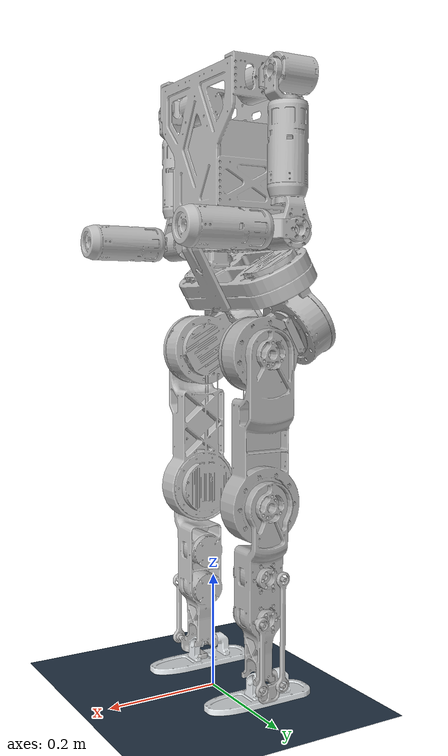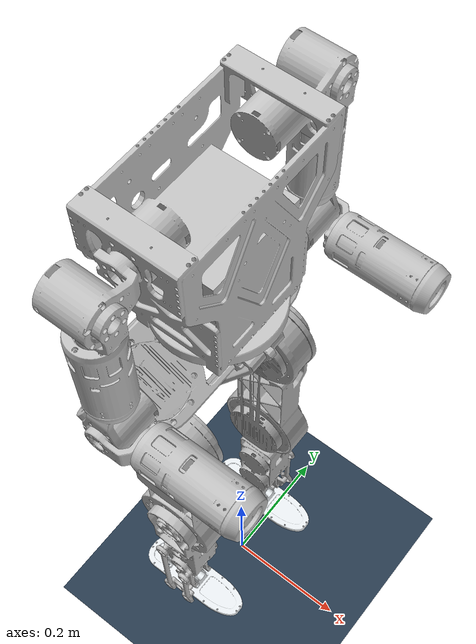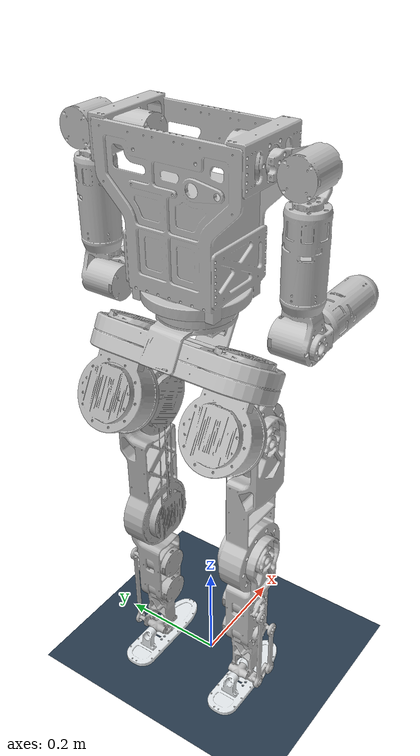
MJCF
<mujoco model="atom_urdf_long">
    <compiler angle="radian" meshdir="./meshes/" eulerseq="zyx"/>
    <option timestep='0.001' iterations='100' solver='PGS' gravity='0 0 -9.81'>
        <flag frictionloss="enable"/>
    </option>
    <size njmax="500" nconmax="100"/>
    <visual>
        <quality shadowsize='4096'/>
        <map znear='0.05'/>
    </visual>
    <default>
        <joint limited='true'/>
        <motor ctrllimited='true'/>
        <geom condim='4' contype="1" conaffinity="15" solref='0.001 2' friction='0.9 0.2 0.2' group="1"/>
        <equality solref='0.001 2'/>
        <default class='visualgeom'>
            <geom material='visualgeom' condim='1' contype='0' conaffinity='0'/>
        </default>
        <default class='obstacle'>
            <geom material='obstacle' condim='3' contype='1' conaffinity='15'/>
        </default>
        <default class='waist_joint_param'>
            <joint damping="0.01" frictionloss="0.01" armature="0.01"/>
        </default>
        <default class='leg_joint_param'>
            <joint damping="0.01" frictionloss="0.01" armature="0.01"/>
        </default>
        <default class='arm_joint_param'>
            <joint damping="0.01" frictionloss="0.01" armature="0.01"/>
        </default>
    </default>
    <asset>
        <texture type="skybox" builtin="gradient" rgb1="0.3 0.5 0.7" rgb2="0 0 0" width="512" height="512"/>
        <texture name="texplane" type="2d" builtin="checker" rgb1=".2 .3 .4" rgb2=".1 0.15 0.2"
            width="512" height="512" mark="cross" markrgb=".8 .8 .8"/>

        <material name="matplane" reflectance="0." texture="texplane" texrepeat="1 1" texuniform="true"/>

        <material name='obstacle'  rgba='0.9 0.6 0.2 1'/>
        <material name='visualgeom'  rgba='0.5 0.9 0.2 1'/>

        <mesh name="base_link"  file="base_link.STL"/>
        <mesh name="left_thigh_yaw_link"  file="left_thigh_yaw_link.STL"/>
        <mesh name="left_thigh_roll_link"  file="left_thigh_roll_link.STL"/>
        <mesh name="left_thigh_pitch_link"  file="left_thigh_pitch_link.STL"/>
        <mesh name="left_knee_link"  file="left_knee_link.STL"/>
        <mesh name="left_ankle_pitch_link"  file="left_ankle_pitch_link.STL"/>
        <mesh name="left_ankle_roll_link"  file="left_ankle_roll_link.STL"/>
        <mesh name="right_thigh_yaw_link"  file="right_thigh_yaw_link.STL"/>
        <mesh name="right_thigh_roll_link"  file="right_thigh_roll_link.STL"/>
        <mesh name="right_thigh_pitch_link"  file="right_thigh_pitch_link.STL"/>
        <mesh name="right_knee_link"  file="right_knee_link.STL"/>
        <mesh name="right_ankle_pitch_link"  file="right_ankle_pitch_link.STL"/>
        <mesh name="right_ankle_roll_link"  file="right_ankle_roll_link.STL"/>
        <mesh name="torso_link"  file="torso_link.STL"/>
        <mesh name="left_arm_pitch_link"  file="left_arm_pitch_link.STL"/>
        <mesh name="left_arm_roll_link"  file="left_arm_roll_link.STL"/>
        <mesh name="left_arm_yaw_link"  file="left_arm_yaw_link.STL"/>
        <mesh name="left_elbow_pitch_link"  file="left_elbow_pitch_link.STL"/>
        <mesh name="left_elbow_yaw_link"  file="left_elbow_yaw_link.STL"/>
        <mesh name="right_arm_pitch_link"  file="right_arm_pitch_link.STL"/>
        <mesh name="right_arm_roll_link"  file="right_arm_roll_link.STL"/>
        <mesh name="right_arm_yaw_link"  file="right_arm_yaw_link.STL"/>
        <mesh name="right_elbow_pitch_link"  file="right_elbow_pitch_link.STL"/>
        <mesh name="right_elbow_yaw_link"  file="right_elbow_yaw_link.STL"/>

        <hfield name='hf0' nrow='200' ncol='200' size="10 5 0.2 .1"/>
    </asset>
    <worldbody>
        <light directional="true" diffuse=".4 .4 .4" specular="0.1 0.1 0.1" pos="0 0 5.0" dir="0 0 -1" castshadow="false"/>
        <light directional="true" diffuse=".6 .6 .6" specular="0.2 0.2 0.2" pos="0 0 4" dir="0 0 -1"/>
        <geom name="ground" type="plane" size="0 0 1" pos="0.001 0 0" quat="1 0 0 0" material="matplane" condim="1" conaffinity='15' group="0"/>

        <body name="base_link" pos="0 0 0.75">
            <site name='imu' size='0.01' pos='0.0 0 0.0'/>
         <inertial
            pos="-0.04747316 -0.00000245 -0.01033754"
            mass="5.38006123"
            fullinertia="0.03019625 0.02710884 0.04164465 0.00000001 -0.00325334 0.00000014"/>
            <joint name="floating_base_joint" type="free" limited="false"/>
            <geom type="mesh" rgba="0.75294 0.75294 0.75294 1" mesh="base_link"/>
            <body name="left_thigh_yaw_link" pos="-0.071093 0.1 -0.051778">
            <inertial
                pos="-0.03860399 0.00000000 -0.05488876"
                mass="1.68866185"
                fullinertia="0.00828412 0.01007750 0.00500466 0.00000001 -0.00427630 0.00000000"/>
                <joint name="left_thigh_yaw_joint" pos="0 0 0" axis="-0.499998 0 -0.866027" range="-1 0.2" class="leg_joint_param"/>
                <geom type="mesh" rgba="0.69804 0.69804 0.69804 1" mesh="left_thigh_yaw_link" class="visualgeom"/>
                <body name="left_thigh_roll_link" pos="-0.017693 0 -0.072346">
                <inertial
                    pos="0.05565085 -0.00585964 -0.03213037"
                    mass="1.71632646"
                    fullinertia="0.00408080 0.01086273 0.00787597 0.00060873 0.00328672 -0.00035146"/>
                    <joint name="left_thigh_roll_joint" pos="0 0 0" axis="0.866027 0 -0.499998" range="-0.2 2" class="leg_joint_param"/>
                    <geom type="mesh" rgba="0.69804 0.69804 0.69804 1" mesh="left_thigh_roll_link" class="visualgeom"/>
                    <body name="left_thigh_pitch_link" pos="0.060622 0.02085 -0.035">
                    <inertial
                        pos="0.00004587 -0.01904764 -0.19858147"
                        mass="2.34600762"
                        fullinertia="0.11355467 0.11410206 0.00388054 -0.00000105 0.00003567 -0.01102469"/>
                        <joint name="left_thigh_pitch_joint" pos="0 0 0" axis="0 1 0" range="-2.5 0.8" class="leg_joint_param"/>
                        <geom type="mesh" rgba="0.69804 0.69804 0.69804 1" mesh="left_thigh_pitch_link" class="visualgeom"/>
                        <body name="left_knee_link" pos="0 0 -0.25">
                        <inertial
                            pos="-0.00032236 -0.01251629 -0.14554011"
                            mass="1.79036871"
                            fullinertia="0.05037722 0.04980070 0.00144706 0.00001321 -0.00005629 -0.00362648"/>
                            <joint name="left_knee_joint" pos="0 0 0" axis="0 1 0" range="0 2.5" class="leg_joint_param"/>
                            <geom type="mesh" rgba="0.69804 0.69804 0.69804 1" mesh="left_knee_link" class="visualgeom"/>
                            <body name="left_ankle_pitch_link" pos="0 -0.02085 -0.3">
                            <inertial
                                pos="0 0 0"
                                mass="0.084"
                                fullinertia="0.00000863 0.00000863 0.00001448 0 0 0"/>
                                <joint name="left_ankle_pitch_joint" pos="0 0 0" axis="0 1 0" range="-0.6 0.6" class="leg_joint_param" frictionloss="0.05"/>
                                <geom type="mesh" rgba="0.69804 0.69804 0.69804 1" mesh="left_ankle_pitch_link" class="visualgeom"/>
                                <body name="left_ankle_roll_link">
                                <inertial
                                    pos="0.01590617 0.00230268 -0.02949007"
                                    mass="0.30640039"
                                    fullinertia="0.00038476 0.00086435 0.00063926 0.0 0.00017084 0.00000894"/>
                                    <joint name="left_ankle_roll_joint" pos="0 0 0" axis="1 0 0" range="-0.5 0.5" class="leg_joint_param" frictionloss="0.05"/>
                                    <geom type="mesh" rgba="0.898039 0.917647 0.929412 1" mesh="left_ankle_roll_link"/>
                                </body>
                            </body>
                        </body>
                    </body>
                </body>
            </body>
            <body name="right_thigh_yaw_link" pos="-0.071093 -0.1 -0.051778">
            <inertial
                pos="-0.03859500 0.00000000 -0.05502715"
                mass="1.68565743"
                fullinertia="0.00828370 0.01007691 0.00500350 0.00000001 -0.00427632 0.00000000"/>
                <joint name="right_thigh_yaw_joint" pos="0 0 0" axis="-0.499998 0 -0.866027" range="-0.2 1" class="leg_joint_param"/>
                <geom type="mesh" rgba="0.752941 0.752941 0.752941 1" mesh="right_thigh_yaw_link" class="visualgeom"/>
                <body name="right_thigh_roll_link" pos="-0.0189924084475403 0 -0.0715958163677252">
                <inertial
                    pos="0.05695017 0.00585964 -0.03287986"
                    mass="1.71632646"
                    fullinertia="0.00416447 0.01119747 0.00812703 -0.00062180 0.00343166 0.00035899"/>
                    <joint name="right_thigh_roll_joint" pos="0 0 0" axis="0.866027 0 -0.499998" range="-2 0.2" class="leg_joint_param"/>
                    <geom type="mesh" rgba="0.752941 0.752941 0.752941 1" mesh="right_thigh_roll_link" class="visualgeom"/>
                    <body name="right_thigh_pitch_link" pos="0.0619208163652291 -0.0208499999999942 -0.0357500000093095">
                    <inertial
                        pos="0.00004584 0.01904764 -0.19858147"
                        mass="2.34600762"
                        fullinertia="0.11355467 0.11410206 0.00388054 0.00000105 0.00003566 0.01102469"/>
                        <joint name="right_thigh_pitch_joint" pos="0 0 0" axis="0 1 0" range="-2.5 0.8" class="leg_joint_param"/>
                        <geom type="mesh" rgba="0.752941 0.752941 0.752941 1" mesh="right_thigh_pitch_link" class="visualgeom"/>
                        <body name="right_knee_link" pos="0 0 -0.250000000000016">
                        <inertial
                            pos="0.00034876 0.01251629 -0.14550316"
                            mass="1.79036871"
                            fullinertia="0.05035671 0.04978019 0.00144706 0.00001321 0.00006361 0.00362648"/>
                            <joint name="right_knee_joint" pos="0 0 0" axis="0 1 0" range="0 2.5" class="leg_joint_param"/>
                            <geom type="mesh" rgba="0.752941 0.752941 0.752941 1" mesh="right_knee_link" class="visualgeom"/>
                            <body name="right_ankle_pitch_link" pos="0 0.0208500000000073 -0.299999999999986">
                            <inertial
                                pos="0 0 0"
                                mass="0.084"
                                fullinertia="0.00000863 0.00000863 0.00001448 0 0 0"/>
                                <joint name="right_ankle_pitch_joint" pos="0 0 0" axis="0 1 0" range="-0.6 0.6" class="leg_joint_param" frictionloss="0.05"/>
                                <geom type="mesh" rgba="0.752941 0.752941 0.752941 1" mesh="right_ankle_pitch_link" class="visualgeom"/>
                                <body name="right_ankle_roll_link">
                                <inertial
                                    pos="0.01590617 -0.00230290 -0.02949007"
                                    mass="0.30640039"
                                    fullinertia="0.00038476 0.00086435 0.00063926 0.00000000 0.00017084 -0.00000894"/>
                                    <joint name="right_ankle_roll_joint" pos="0 0 0" axis="1 0 0" range="-0.5 0.5" class="leg_joint_param" frictionloss="0.05"/>
                                    <geom type="mesh" rgba="0.898039 0.917647 0.929412 1" mesh="right_ankle_roll_link"/>
                                </body>
                            </body>
                        </body>
                    </body>
                </body>
            </body>
            <body name="torso_link" pos="-0.0281649492242451 0 0.0672000000054882">
            <inertial
                pos="-0.00232713 -0.00003499 0.09671181"
                mass="7.70005232"
                fullinertia="0.14285885 0.13043257 0.03968469 -0.00004101 0.00400640 0.00003257"/>
                <joint name="torso_joint" pos="0 0 0" axis="0 0 1" range="-2.62 2.62" class="waist_joint_param"/>
                <geom type="mesh" rgba="0.752941 0.752941 0.752941 1" mesh="torso_link" class="visualgeom"/>
                <body name="left_arm_pitch_link" pos="0 0.121749999999383 0.206175860782433">
                <inertial
                    pos="-0.00442275 0.04993792 0.00005596"
                    mass="0.47178757"
                    fullinertia="0.00133228 0.00008982 0.00137408 0.00012643 -0.00000056 -0.00000148"/>
                    <joint name="left_arm_pitch_joint" pos="0 0 0" axis="0 1 0" range="-3.14 1.57" class="arm_joint_param"/>
                    <geom type="mesh" rgba="0.752941 0.752941 0.752941 1" mesh="left_arm_pitch_link" class="visualgeom"/>
                    <body name="left_arm_roll_link" pos="0.02 0.056 0">
                    <inertial
                        pos="-0.00433076 0 -0.02378501"
                        mass="0.09168685"
                        fullinertia="0.00010210 0.00011636 0.00003231 0.0 -0.00002948 0.0"/>
                        <joint name="left_arm_roll_joint" pos="0 0 0" axis="1 0 0" range="-0.25 3.14" class="arm_joint_param"/>
                        <geom type="mesh" rgba="0.752941 0.752941 0.752941 1" mesh="left_arm_roll_link" class="visualgeom"/>
                        <body name="left_arm_yaw_link" pos="-0.02 0 -0.05">
                        <inertial
                            pos="-0.00004328 -0.00182110 -0.10615897"
                            mass="1.15324429"
                            fullinertia="0.01919610 0.01915491 0.00033463 -0.00000011 -0.00000607 -0.00040415"/>
                            <joint name="left_arm_yaw_joint" pos="0 0 0" axis="0 0 -1" range="-2.6 2.6" class="arm_joint_param"/>
                            <geom type="mesh" rgba="0.752941 0.752941 0.752941 1" mesh="left_arm_yaw_link" class="visualgeom"/>
                            <body name="left_elbow_pitch_link" pos="0 0.02 -0.18875">
                            <inertial
                                 pos="0.02378501 -0.00433076 0.00000000"
                                 mass="0.09168685"
                                 fullinertia="0.00003231 0.00010210 0.00011636 0.00002948 0.0 0.0"/>
                                 <joint name="left_elbow_pitch_joint" pos="0 0 0" axis="0 1 0" range="-1 1.57" class="arm_joint_param"/>
                                <geom type="mesh" rgba="0.752941 0.752941 0.752941 1" mesh="left_elbow_pitch_link" class="visualgeom"/>
                                <body name="left_elbow_yaw_link" pos="0.05 -0.02 0">
                                <inertial
                                 pos="0.05317629 -0.00003450 -0.00001992"
                                 mass="0.68145673"
                                 fullinertia="0.00024481 0.00325259 0.00325345 0.00000117 0.00000058 -0.00000060"/>
                                    <joint name="left_elbow_yaw_joint" pos="0 0 0" axis="1 0 0" range="-1.57 1.57" class="arm_joint_param"/>
                                    <geom type="mesh" rgba="0.752941 0.752941 0.752941 1" mesh="left_elbow_yaw_link" class="visualgeom"/>
                                </body>
                            </body>
                        </body>
                    </body>
                </body>
                <body name="right_arm_pitch_link" pos="0 -0.12175 0.20518">
                <inertial
                    pos="-0.00442275 -0.04993792 0.00005596"
                    mass="0.47178757"
                    fullinertia="0.00133228 0.00008982 0.00137408 -0.00012643 -0.00000056 0.00000148"/>
                    <joint name="right_arm_pitch_joint" pos="0 0 0" axis="0 1 0" range="-3.14 1.57" class="arm_joint_param"/>
                    <geom type="mesh" rgba="0.752941 0.752941 0.752941 1" mesh="right_arm_pitch_link" class="visualgeom"/>
                    <body name="right_arm_roll_link" pos="0.02 -0.056 0">
                    <inertial
                        pos="-0.00433076 0.00000000 -0.02378501"
                        mass="0.09168685"
                        fullinertia="0.00010210 0.00011636 0.00003231 0.0 -0.00002948 0.0"/>
                        <joint name="right_arm_roll_joint" pos="0 0 0" axis="1 0 0" range="-3.14 0.25" class="arm_joint_param"/>
                        <geom type="mesh" rgba="0.752941 0.752941 0.752941 1" mesh="right_arm_roll_link" class="visualgeom"/>
                        <body name="right_arm_yaw_link" pos="-0.02 0 -0.05">
                        <inertial
                            pos="-0.00002289 0.00183287 -0.10615897"
                            mass="1.15324429"
                            fullinertia="0.01919714 0.01915387 0.00033463 -0.00000049 -0.00000506 0.00040473"/>
                            <joint name="right_arm_yaw_joint" pos="0 0 0" axis="0 0 -1" range="-2.6 2.6" class="arm_joint_param"/>
                            <geom type="mesh" rgba="0.752941 0.752941 0.752941 1" mesh="right_arm_yaw_link" class="visualgeom"/>
                            <body name="right_elbow_pitch_link" pos="0 -0.02 -0.18875">
                            <inertial
                                pos="0.02378501 0.00433076 0"
                                mass="0.09168685"
                                fullinertia="0.00003231 0.00010210 0.00011636 -0.00002948 0.0 0.0"/>
                                <joint name="right_elbow_pitch_joint" pos="0 0 0" axis="0 1 0" range="-1.0 1.57" class="arm_joint_param"/>
                                <geom type="mesh" rgba="0.752941 0.752941 0.752941 1" mesh="right_elbow_pitch_link" class="visualgeom"/>
                                <body name="right_elbow_yaw_link" pos="0.05 0.02 0">
                                <inertial
                                    pos="0.05317629 0.00003450 0.00001992"
                                    mass="0.68145673"
                                    fullinertia="0.00024481 0.00325259 0.00325345 -0.00000117 -0.00000058 -0.00000060"/>
                                    <joint name="right_elbow_yaw_joint" pos="0 0 0" axis="1 0 0" range="-1.57 1.57" class="arm_joint_param"/>
                                    <geom type="mesh" rgba="0.752941 0.752941 0.752941 1" mesh="right_elbow_yaw_link" class="visualgeom"/>
                                </body>
                            </body>
                        </body>
                    </body>
                </body>
            </body>
        </body>
    </worldbody>

    <actuator>
        <motor name="left_thigh_yaw_joint" joint="left_thigh_yaw_joint" gear="1" ctrllimited="true" ctrlrange="-200 200"/>
        <motor name="left_thigh_roll_joint" joint="left_thigh_roll_joint" gear="1" ctrllimited="true" ctrlrange="-200 200"/>
        <motor name="left_thigh_pitch_joint" joint="left_thigh_pitch_joint" gear="1" ctrllimited="true" ctrlrange="-200 200"/>
        <motor name="left_knee_joint" joint="left_knee_joint" gear="1" ctrllimited="true" ctrlrange="-200 200"/>
        <motor name="left_ankle_pitch_joint" joint="left_ankle_pitch_joint" gear="1" ctrllimited="true" ctrlrange="-200 200"/>
        <motor name="left_ankle_roll_joint" joint="left_ankle_roll_joint" gear="1" ctrllimited="true" ctrlrange="-200 200"/>
        <motor name="right_thigh_yaw_joint" joint="right_thigh_yaw_joint" gear="1" ctrllimited="true" ctrlrange="-200 200"/>
        <motor name="right_thigh_roll_joint" joint="right_thigh_roll_joint" gear="1" ctrllimited="true" ctrlrange="-200 200"/>
        <motor name="right_thigh_pitch_joint" joint="right_thigh_pitch_joint" gear="1" ctrllimited="true" ctrlrange="-200 200"/>
        <motor name="right_knee_joint" joint="right_knee_joint" gear="1" ctrllimited="true" ctrlrange="-200 200"/>
        <motor name="right_ankle_pitch_joint" joint="right_ankle_pitch_joint" gear="1" ctrllimited="true" ctrlrange="-200 200"/>
        <motor name="right_ankle_roll_joint" joint="right_ankle_roll_joint" gear="1" ctrllimited="true" ctrlrange="-200 200"/>
        <motor name="torso_joint" joint="torso_joint" gear="1" ctrllimited="true" ctrlrange="-200 200"/>

        <motor name="left_arm_pitch_joint" joint="left_arm_pitch_joint" gear="1" ctrllimited="true" ctrlrange="-200 200"/>
        <motor name="left_arm_roll_joint" joint="left_arm_roll_joint" gear="1" ctrllimited="true" ctrlrange="-200 200"/>
        <motor name="left_arm_yaw_joint" joint="left_arm_yaw_joint" gear="1" ctrllimited="true" ctrlrange="-200 200"/>
        <motor name="left_elbow_pitch_joint" joint="left_elbow_pitch_joint" gear="1" ctrllimited="true" ctrlrange="-200 200"/>
        <motor name="left_elbow_yaw_joint" joint="left_elbow_yaw_joint" gear="1" ctrllimited="true" ctrlrange="-200 200"/>
        <motor name="right_arm_pitch_joint" joint="right_arm_pitch_joint" gear="1" ctrllimited="true" ctrlrange="-200 200"/>
        <motor name="right_arm_roll_joint" joint="right_arm_roll_joint" gear="1" ctrllimited="true" ctrlrange="-200 200"/>
        <motor name="right_arm_yaw_joint" joint="right_arm_yaw_joint" gear="1" ctrllimited="true" ctrlrange="-200 200"/>
        <motor name="right_elbow_pitch_joint" joint="right_elbow_pitch_joint" gear="1" ctrllimited="true" ctrlrange="-200 200"/>
        <motor name="right_elbow_yaw_joint" joint="right_elbow_yaw_joint" gear="1" ctrllimited="true" ctrlrange="-200 200"/>
    </actuator>

         <sensor>
                <actuatorpos name='left_thigh_yaw_p'  actuator='left_thigh_yaw_joint' user='13'/>
                <actuatorpos name='left_thigh_roll_p'  actuator='left_thigh_roll_joint' user='13'/>
                <actuatorpos name='left_thigh_pitch_p'  actuator='left_thigh_pitch_joint' user='13'/>
                <actuatorpos name='left_knee_p'  actuator='left_knee_joint' user='13'/>
                <actuatorpos name='left_ankle_pitch_p'  actuator='left_ankle_pitch_joint' user='13'/>
                <actuatorpos name='left_ankle_roll_p'  actuator='left_ankle_roll_joint' user='13'/>
                <actuatorpos name='right_thigh_yaw_p'  actuator='right_thigh_yaw_joint' user='13'/>
                <actuatorpos name='right_thigh_roll_p'  actuator='right_thigh_roll_joint' user='13'/>
                <actuatorpos name='right_thigh_pitch_p'  actuator='right_thigh_pitch_joint' user='13'/>
                <actuatorpos name='right_knee_p'  actuator='right_knee_joint' user='13'/>
                <actuatorpos name='right_ankle_pitch_p'  actuator='right_ankle_pitch_joint' user='13'/>
                <actuatorpos name='right_ankle_roll_p'  actuator='right_ankle_roll_joint' user='13'/>
                <actuatorpos name='torso_yaw_p'  actuator='torso_joint' user='13'/>
                <actuatorpos name='left_arm_pitch_p'  actuator='left_arm_pitch_joint' user='13'/>
                <actuatorpos name='left_arm_roll_p'  actuator='left_arm_roll_joint' user='13'/>
                <actuatorpos name='left_arm_yaw_p'  actuator='left_arm_yaw_joint' user='13'/>
                <actuatorpos name='left_elbow_pitch_p'  actuator='left_elbow_pitch_joint' user='13'/>
                <actuatorpos name='left_elbow_yaw_p'  actuator='left_elbow_yaw_joint' user='13'/>
                <actuatorpos name='right_arm_pitch_p'  actuator='right_arm_pitch_joint' user='13'/>
                <actuatorpos name='right_arm_roll_p'  actuator='right_arm_roll_joint' user='13'/>
                <actuatorpos name='right_arm_yaw_p'  actuator='right_arm_yaw_joint' user='13'/>
                <actuatorpos name='right_elbow_pitch_p'  actuator='right_elbow_pitch_joint' user='13'/>
                <actuatorpos name='right_elbow_yaw_p'  actuator='right_elbow_yaw_joint' user='13'/>

                <actuatorvel name='left_thigh_yaw_v'  actuator='left_thigh_yaw_joint' user='13'/>
                <actuatorvel name='left_thigh_roll_v'  actuator='left_thigh_roll_joint' user='13'/>
                <actuatorvel name='left_thigh_pitch_v'  actuator='left_thigh_pitch_joint' user='13'/>
                <actuatorvel name='left_knee_v'  actuator='left_knee_joint' user='13'/>
                <actuatorvel name='left_ankle_pitch_v'  actuator='left_ankle_pitch_joint' user='13'/>
                <actuatorvel name='left_ankle_roll_v'  actuator='left_ankle_roll_joint' user='13'/>
                <actuatorvel name='right_thigh_yaw_v'  actuator='right_thigh_yaw_joint' user='13'/>
                <actuatorvel name='right_thigh_roll_v'  actuator='right_thigh_roll_joint' user='13'/>
                <actuatorvel name='right_thigh_pitch_v'  actuator='right_thigh_pitch_joint' user='13'/>
                <actuatorvel name='right_knee_v'  actuator='right_knee_joint' user='13'/>
                <actuatorvel name='right_ankle_pitch_v'  actuator='right_ankle_pitch_joint' user='13'/>
                <actuatorvel name='right_ankle_roll_v'  actuator='right_ankle_roll_joint' user='13'/>
                <actuatorvel name='torso_yaw_v'  actuator='torso_joint' user='13'/>
                <actuatorvel name='left_arm_pitch_v'  actuator='left_arm_pitch_joint' user='13'/>
                <actuatorvel name='left_arm_roll_v'  actuator='left_arm_roll_joint' user='13'/>
                <actuatorvel name='left_arm_yaw_v'  actuator='left_arm_yaw_joint' user='13'/>
                <actuatorvel name='left_elbow_pitch_v'  actuator='left_elbow_pitch_joint' user='13'/>
                <actuatorvel name='left_elbow_yaw_v'  actuator='left_elbow_yaw_joint' user='13'/>
                <actuatorvel name='right_arm_pitch_v'  actuator='right_arm_pitch_joint' user='13'/>
                <actuatorvel name='right_arm_roll_v'  actuator='right_arm_roll_joint' user='13'/>
                <actuatorvel name='right_arm_yaw_v'  actuator='right_arm_yaw_joint' user='13'/>
                <actuatorvel name='right_elbow_pitch_v'  actuator='right_elbow_pitch_joint' user='13'/>
                <actuatorvel name='right_elbow_yaw_v'  actuator='right_elbow_yaw_joint' user='13'/>

                <actuatorfrc name='left_thigh_yaw_f'  actuator='left_thigh_yaw_joint' user='13' noise='1e-3'/>
                <actuatorfrc name='left_thigh_roll_f'  actuator='left_thigh_roll_joint' user='13' noise='1e-3'/>
                <actuatorfrc name='left_thigh_pitch_f'  actuator='left_thigh_pitch_joint' user='13' noise='1e-3'/>
                <actuatorfrc name='left_knee_f'  actuator='left_knee_joint' user='13' noise='1e-3'/>
                <actuatorfrc name='left_ankle_pitch_f'  actuator='left_ankle_pitch_joint' user='13' noise='1e-3'/>
                <actuatorfrc name='left_ankle_roll_f'  actuator='left_ankle_roll_joint' user='13' noise='1e-3'/>
                <actuatorfrc name='right_thigh_yaw_f'  actuator='right_thigh_yaw_joint' user='13' noise='1e-3'/>
                <actuatorfrc name='right_thigh_roll_f'  actuator='right_thigh_roll_joint' user='13' noise='1e-3'/>
                <actuatorfrc name='right_thigh_pitch_f'  actuator='right_thigh_pitch_joint' user='13' noise='1e-3'/>
                <actuatorfrc name='right_knee_f'  actuator='right_knee_joint' user='13' noise='1e-3'/>
                <actuatorfrc name='right_ankle_pitch_f'  actuator='right_ankle_pitch_joint' user='13' noise='1e-3'/>
                <actuatorfrc name='right_ankle_roll_f'  actuator='right_ankle_roll_joint' user='13' noise='1e-3'/>
                <actuatorfrc name='torso_yaw_f'  actuator='torso_joint' user='13' noise='1e-3'/>
                <actuatorfrc name='left_arm_pitch_f'  actuator='left_arm_pitch_joint' user='13' noise='1e-3'/>
                <actuatorfrc name='left_arm_roll_f'  actuator='left_arm_roll_joint' user='13' noise='1e-3'/>
                <actuatorfrc name='left_arm_yaw_f'  actuator='left_arm_yaw_joint' user='13' noise='1e-3'/>
                <actuatorfrc name='left_elbow_pitch_f'  actuator='left_elbow_pitch_joint' user='13' noise='1e-3'/>
                <actuatorfrc name='left_elbow_yaw_f'  actuator='left_elbow_yaw_joint' user='13' noise='1e-3'/>
                <actuatorfrc name='right_arm_pitch_f'  actuator='right_arm_pitch_joint' user='13' noise='1e-3'/>
                <actuatorfrc name='right_arm_roll_f'  actuator='right_arm_roll_joint' user='13' noise='1e-3'/>
                <actuatorfrc name='right_arm_yaw_f'  actuator='right_arm_yaw_joint' user='13' noise='1e-3'/>
                <actuatorfrc name='right_elbow_pitch_f'  actuator='right_elbow_pitch_joint' user='13' noise='1e-3'/>
                <actuatorfrc name='right_elbow_yaw_f'  actuator='right_elbow_yaw_joint' user='13' noise='1e-3'/>

        <framequat     name='orientation' objtype='site' noise='0.001' objname='imu'/>
        <framepos     name='position' objtype='site' noise='0.001' objname='imu'/>
        <gyro          name='angular-velocity'    site='imu' noise='0.005' cutoff='34.9'/>
        <velocimeter   name='linear-velocity'     site='imu' noise='0.001' cutoff='30'/>
        <accelerometer name='linear-acceleration' site='imu' noise='0.005' cutoff='157'/>
        <magnetometer  name='magnetometer'        site='imu'/>

    </sensor>
    <visual>
        <global offwidth="1920" offheight="1080"/>
    </visual>
</mujoco>
